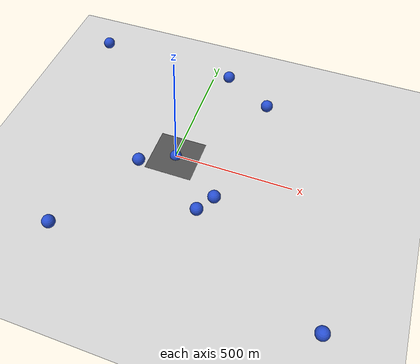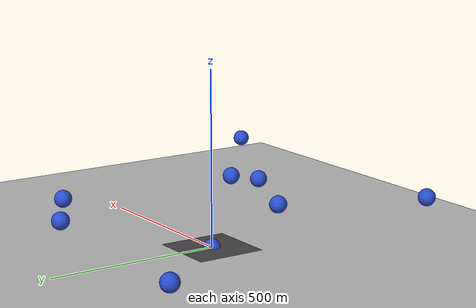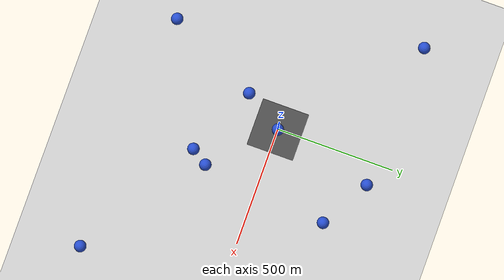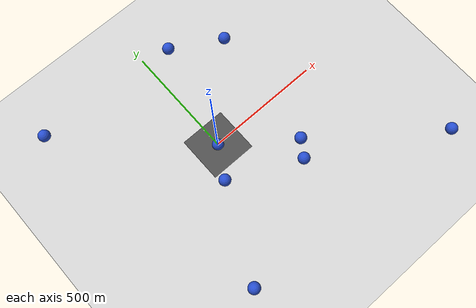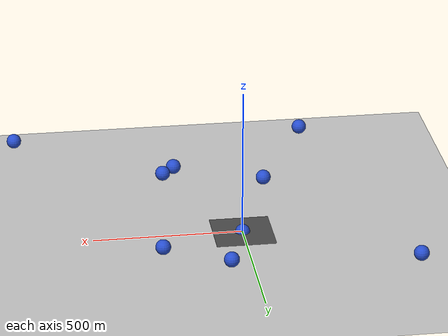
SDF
<sdf version="1.7">
 <world name="default">
  <light name="sun" type="directional">
   <pose>0 0 10 0 -0 0</pose>
   <diffuse>0.8 0.8 0.8 1</diffuse>
   <specular>0.2 0.2 0.2 1</specular>
   <attenuation>
    <range>1000</range>
    <constant>0.9</constant>
    <linear>0.01</linear>
    <quadratic>0.001</quadratic>
   </attenuation>
   <direction>-0.5 0.1 -0.9</direction>
   <spot><inner_angle>0</inner_angle><outer_angle>0</outer_angle><falloff>0</falloff></spot>
  </light>
  <model name="ground_plane">
   <static>1</static>
   <link name="link">
    <collision name="collision">
     <geometry><plane><normal>0 0 1</normal><size>100 100</size></plane></geometry>
     <surface>
      <contact><collide_bitmask>65535</collide_bitmask></contact>
      <friction><ode><mu>100</mu><mu2>50</mu2></ode></friction>
     </surface>
    </collision>
    <visual name="visual">
     <cast_shadows>0</cast_shadows>
     <geometry><plane><normal>0 0 1</normal><size>100 100</size></plane></geometry>
     <material>
      <script><uri>file://media/materials/scripts/gazebo.material</uri><name>Gazebo/Grey</name></script>
     </material>
    </visual>
   </link>
  </model>
  <model name="asphalt_plane">
   <static>1</static>
   <link name="link">
    <collision name="collision"><geometry><box><size>200 200 0.1</size></box></geometry></collision>
    <visual name="visual">
     <cast_shadows>0</cast_shadows>
     <geometry><box><size>200 200 0.1</size></box></geometry>
     <material>
      <script>
       <uri>model://asphalt_plane/materials/scripts</uri>
       <uri>model://asphalt_plane/materials/textures</uri>
       <name>vrc/asphalt</name>
      </script>
     </material>
    </visual>
   </link>
  </model>
  <physics name="default_physics" default="0" type="ode">
   <ode>
    <solver>
     <type>quick</type>
     <iters>10</iters>
     <sor>1.3</sor>
     <use_dynamic_moi_rescaling>0</use_dynamic_moi_rescaling>
    </solver>
    <constraints>
     <cfm>0</cfm>
     <erp>0.2</erp>
     <contact_max_correcting_vel>100</contact_max_correcting_vel>
     <contact_surface_layer>0.001</contact_surface_layer>
    </constraints>
   </ode>
   <max_step_size>0.004</max_step_size>
   <real_time_factor>1</real_time_factor>
   <real_time_update_rate>250</real_time_update_rate>
  </physics>
  <gravity>0 0 -9.8066</gravity>
  <magnetic_field>6e-06 2.3e-05 -4.2e-05</magnetic_field>
  <atmosphere type="adiabatic"/>
  <scene><ambient>0.4 0.4 0.4 1</ambient><background>0.7 0.7 0.7 1</background><shadows>1</shadows></scene>
  <spherical_coordinates>
   <surface_model>EARTH_WGS84</surface_model>
   <world_frame_orientation>ENU</world_frame_orientation>
   <latitude_deg>0</latitude_deg>
   <longitude_deg>0</longitude_deg>
   <elevation>0</elevation>
   <heading_deg>0</heading_deg>
  </spherical_coordinates>
  <model name="user_way_Point_0">
   <static>1</static>
   <link name="link">
    <gravity>0</gravity>
    <inertial>
     <mass>1</mass>
     <inertia><ixx>0.0001</ixx><ixy>0</ixy><ixz>0</ixz><iyy>0.0001</iyy><iyz>0</iyz><izz>0.0001</izz></inertia>
    </inertial>
    <collision name="collision">
     <geometry><sphere><radius>25</radius></sphere></geometry>
     <surface><contact><collide_without_contact>1</collide_without_contact></contact></surface>
    </collision>
    <visual name="visual">
     <geometry><sphere><radius>25</radius></sphere></geometry>
     <material>
      <script><name>Gazebo/Blue</name><uri>file://media/materials/scripts/gazebo.material</uri></script>
     </material>
    </visual>
   </link>
  </model>
  <model name="user_way_Point_1">
   <static>1</static>
   <pose>-279.32663623464083 -536.6547143083856 124.15424840481694 0 -0 0</pose>
   <link name="link">
    <gravity>0</gravity>
    <inertial>
     <mass>1</mass>
     <inertia><ixx>0.0001</ixx><ixy>0</ixy><ixz>0</ixz><iyy>0.0001</iyy><iyz>0</iyz><izz>0.0001</izz></inertia>
    </inertial>
    <collision name="collision">
     <geometry><sphere><radius>25</radius></sphere></geometry>
     <surface><contact><collide_without_contact>1</collide_without_contact></contact></surface>
    </collision>
    <visual name="visual">
     <geometry><sphere><radius>25</radius></sphere></geometry>
     <material>
      <script><name>Gazebo/Blue</name><uri>file://media/materials/scripts/gazebo.material</uri></script>
     </material>
    </visual>
   </link>
  </model>
  <model name="user_way_Point_2">
   <static>1</static>
   <pose>240.8654209454418 -227.75039995198188 122.50081247477927 0 -0 0</pose>
   <link name="link">
    <gravity>0</gravity>
    <inertial>
     <mass>1</mass>
     <inertia><ixx>0.0001</ixx><ixy>0</ixy><ixz>0</ixz><iyy>0.0001</iyy><iyz>0</iyz><izz>0.0001</izz></inertia>
    </inertial>
    <collision name="collision">
     <geometry><sphere><radius>25</radius></sphere></geometry>
     <surface><contact><collide_without_contact>1</collide_without_contact></contact></surface>
    </collision>
    <visual name="visual">
     <geometry><sphere><radius>25</radius></sphere></geometry>
     <material>
      <script><name>Gazebo/Blue</name><uri>file://media/materials/scripts/gazebo.material</uri></script>
     </material>
    </visual>
   </link>
  </model>
  <model name="user_way_Point_3">
   <static>1</static>
   <pose>722.3958311529059 -594.0154898240125 102.73188992771512 0 -0 0</pose>
   <link name="link">
    <gravity>0</gravity>
    <inertial>
     <mass>1</mass>
     <inertia><ixx>0.0001</ixx><ixy>0</ixy><ixz>0</ixz><iyy>0.0001</iyy><iyz>0</iyz><izz>0.0001</izz></inertia>
    </inertial>
    <collision name="collision">
     <geometry><sphere><radius>25</radius></sphere></geometry>
     <surface><contact><collide_without_contact>1</collide_without_contact></contact></surface>
    </collision>
    <visual name="visual">
     <geometry><sphere><radius>25</radius></sphere></geometry>
     <material>
      <script><name>Gazebo/Blue</name><uri>file://media/materials/scripts/gazebo.material</uri></script>
     </material>
    </visual>
   </link>
  </model>
  <model name="user_way_Point_4">
   <static>1</static>
   <pose>196.23307261450535 -295.3946543201836 112.85241421503744 0 -0 0</pose>
   <link name="link">
    <gravity>0</gravity>
    <inertial>
     <mass>1</mass>
     <inertia><ixx>0.0001</ixx><ixy>0</ixy><ixz>0</ixz><iyy>0.0001</iyy><iyz>0</iyz><izz>0.0001</izz></inertia>
    </inertial>
    <collision name="collision">
     <geometry><sphere><radius>25</radius></sphere></geometry>
     <surface><contact><collide_without_contact>1</collide_without_contact></contact></surface>
    </collision>
    <visual name="visual">
     <geometry><sphere><radius>25</radius></sphere></geometry>
     <material>
      <script><name>Gazebo/Blue</name><uri>file://media/materials/scripts/gazebo.material</uri></script>
     </material>
    </visual>
   </link>
  </model>
  <model name="user_way_Point_5">
   <static>1</static>
   <pose>301.1391002577416 300.4378532205699 117.74388279127149 0 -0 0</pose>
   <link name="link">
    <gravity>0</gravity>
    <inertial>
     <mass>1</mass>
     <inertia><ixx>0.0001</ixx><ixy>0</ixy><ixz>0</ixz><iyy>0.0001</iyy><iyz>0</iyz><izz>0.0001</izz></inertia>
    </inertial>
    <collision name="collision">
     <geometry><sphere><radius>25</radius></sphere></geometry>
     <surface><contact><collide_without_contact>1</collide_without_contact></contact></surface>
    </collision>
    <visual name="visual">
     <geometry><sphere><radius>25</radius></sphere></geometry>
     <material>
      <script><name>Gazebo/Blue</name><uri>file://media/materials/scripts/gazebo.material</uri></script>
     </material>
    </visual>
   </link>
  </model>
  <model name="user_way_Point_6">
   <static>1</static>
   <pose>-93.11839783927101 -158.4550283227802 119.75077108930935 0 -0 0</pose>
   <link name="link">
    <gravity>0</gravity>
    <inertial>
     <mass>1</mass>
     <inertia><ixx>0.0001</ixx><ixy>0</ixy><ixz>0</ixz><iyy>0.0001</iyy><iyz>0</iyz><izz>0.0001</izz></inertia>
    </inertial>
    <collision name="collision">
     <geometry><sphere><radius>25</radius></sphere></geometry>
     <surface><contact><collide_without_contact>1</collide_without_contact></contact></surface>
    </collision>
    <visual name="visual">
     <geometry><sphere><radius>25</radius></sphere></geometry>
     <material>
      <script><name>Gazebo/Blue</name><uri>file://media/materials/scripts/gazebo.material</uri></script>
     </material>
    </visual>
   </link>
  </model>
  <model name="user_way_Point_7">
   <static>1</static>
   <pose>96.82632778653493 415.95131999200566 119.39624481807233 0 -0 0</pose>
   <link name="link">
    <gravity>0</gravity>
    <inertial>
     <mass>1</mass>
     <inertia><ixx>0.0001</ixx><ixy>0</ixy><ixz>0</ixz><iyy>0.0001</iyy><iyz>0</iyz><izz>0.0001</izz></inertia>
    </inertial>
    <collision name="collision">
     <geometry><sphere><radius>25</radius></sphere></geometry>
     <surface><contact><collide_without_contact>1</collide_without_contact></contact></surface>
    </collision>
    <visual name="visual">
     <geometry><sphere><radius>25</radius></sphere></geometry>
     <material>
      <script><name>Gazebo/Blue</name><uri>file://media/materials/scripts/gazebo.material</uri></script>
     </material>
    </visual>
   </link>
  </model>
  <model name="user_way_Point_8">
   <static>1</static>
   <pose>-507.25309310956476 449.2635501017904 117.74129030277706 0 -0 0</pose>
   <link name="link">
    <gravity>0</gravity>
    <inertial>
     <mass>1</mass>
     <inertia><ixx>0.0001</ixx><ixy>0</ixy><ixz>0</ixz><iyy>0.0001</iyy><iyz>0</iyz><izz>0.0001</izz></inertia>
    </inertial>
    <collision name="collision">
     <geometry><sphere><radius>25</radius></sphere></geometry>
     <surface><contact><collide_without_contact>1</collide_without_contact></contact></surface>
    </collision>
    <visual name="visual">
     <geometry><sphere><radius>25</radius></sphere></geometry>
     <material>
      <script><name>Gazebo/Blue</name><uri>file://media/materials/scripts/gazebo.material</uri></script>
     </material>
    </visual>
   </link>
  </model>
 </world>
</sdf>
